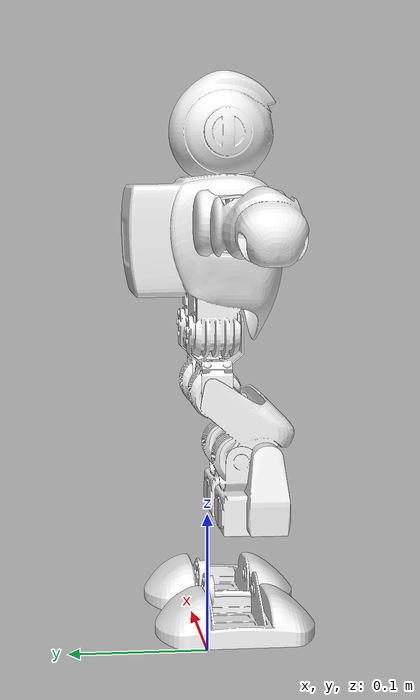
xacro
<?xml version="1.0"?>
<robot name="alpha1s" xmlns:xacro="http://www.ros.org/wiki/xacro">

  <xacro:property name="mesh_pkg" value="package://alpha1s_bringup/meshes"/>
  <xacro:property name="effort"   value="2.5"/>
  <xacro:property name="vel"      value="6.28"/>
  <xacro:property name="damp"     value="0.05"/>
  <xacro:property name="fric"     value="0.01"/>

  <!-- ── MACRO: link con malla + inercia ─────────────────────────── -->
  <xacro:macro name="robot_link" params="name mass ixx iyy izz">
    <link name="${name}">
      <visual>
        <origin xyz="0 0 0" rpy="0 0 0"/>
        <geometry>
          <mesh filename="${mesh_pkg}/visual/${name}.stl"/>
        </geometry>
        <material name="white_plastic">
          <color rgba="0.95 0.95 0.95 1.0"/>
        </material>
      </visual>
      <collision>
        <origin xyz="0 0 0" rpy="0 0 0"/>
        <geometry>
          <mesh filename="${mesh_pkg}/collision/${name}.stl"/>
        </geometry>
      </collision>
      <inertial>
        <origin xyz="0 0 0" rpy="0 0 0"/>
        <mass value="${mass}"/>
        <inertia ixx="${ixx}" ixy="0" ixz="0"
                 iyy="${iyy}" iyz="0" izz="${izz}"/>
      </inertial>
    </link>
  </xacro:macro>

  <!-- ── MACRO: joint revoluto ────────────────────────────────────── -->
  <xacro:macro name="rev_joint" params="name parent child ox oy oz ax ay az lower upper">
    <joint name="${name}" type="revolute">
      <parent link="${parent}"/>
      <child  link="${child}"/>
      <origin xyz="${ox} ${oy} ${oz}" rpy="0 0 0"/>
      <axis   xyz="${ax} ${ay} ${az}"/>
      <limit  lower="${lower}" upper="${upper}"
              effort="${effort}" velocity="${vel}"/>
      <dynamics damping="${damp}" friction="${fric}"/>
    </joint>
  </xacro:macro>

  <!-- ================================================================
       WORLD → BASE
       ================================================================ -->
  <link name="world"/>
  <joint name="world_to_base" type="fixed">
    <parent link="world"/>
    <child  link="base_link"/>
    <origin xyz="0 0 0.28" rpy="0 0 0"/>
  </joint>

  <!-- ================================================================
       BASE LINK / TORSO
       ================================================================ -->
  <xacro:robot_link name="base_link"
    mass="0.5923" ixx="0.003120" iyy="0.001890" izz="0.002410"/>

  <!-- ================================================================
       CABEZA
       offset = Head_global - base_global
       ================================================================ -->
  <xacro:robot_link name="Head_link"
    mass="0.2257" ixx="0.000520" iyy="0.000480" izz="0.000310"/>

  <xacro:rev_joint name="neck_joint"
    parent="base_link" child="Head_link"
    ox="-0.000228" oy="-0.009340" oz="0.057200"
    ax="0" ay="0" az="1"
    lower="-1.047" upper="1.047"/>

  <!-- ================================================================
       BRAZO IZQUIERDO
       ================================================================ -->
  <xacro:robot_link name="l_shoulder_link"
    mass="0.0613" ixx="0.000048" iyy="0.000052" izz="0.000031"/>

  <xacro:rev_joint name="l_shoulder_joint"
    parent="base_link" child="l_shoulder_link"
    ox="0.055000" oy="-0.011620" oz="0.029880"
    ax="1" ay="0" az="0"
    lower="-1.745" upper="1.745"/>

  <xacro:robot_link name="l_arm_link"
    mass="0.0787" ixx="0.000180" iyy="0.000120" izz="0.000095"/>

  <xacro:rev_joint name="l_arm_joint"
    parent="l_shoulder_link" child="l_arm_link"
    ox="0.021170" oy="0.018730" oz="-0.000040"
    ax="0" ay="1" az="0"
    lower="-1.571" upper="1.571"/>

  <xacro:robot_link name="l_forearm_link"
    mass="0.1040" ixx="0.000210" iyy="0.000310" izz="0.000140"/>

  <xacro:rev_joint name="l_elbow_joint"
    parent="l_arm_link" child="l_forearm_link"
    ox="0.059180" oy="-0.003730" oz="-0.000390"
    ax="0" ay="1" az="0"
    lower="-1.571" upper="1.571"/>

  <!-- ================================================================
       BRAZO DERECHO (simétrico)
       ================================================================ -->
  <xacro:robot_link name="r_shoulder_link"
    mass="0.0613" ixx="0.000048" iyy="0.000052" izz="0.000031"/>

  <xacro:rev_joint name="r_shoulder_joint"
    parent="base_link" child="r_shoulder_link"
    ox="-0.055000" oy="-0.011620" oz="0.029880"
    ax="1" ay="0" az="0"
    lower="-1.745" upper="1.745"/>

  <xacro:robot_link name="r_arm_link"
    mass="0.0787" ixx="0.000180" iyy="0.000120" izz="0.000095"/>

  <xacro:rev_joint name="r_arm_joint"
    parent="r_shoulder_link" child="r_arm_link"
    ox="-0.021170" oy="0.018730" oz="-0.000040"
    ax="0" ay="1" az="0"
    lower="-1.571" upper="1.571"/>

  <xacro:robot_link name="r_forearm_link"
    mass="0.1040" ixx="0.000210" iyy="0.000310" izz="0.000140"/>

  <xacro:rev_joint name="r_elbow_joint"
    parent="r_arm_link" child="r_forearm_link"
    ox="-0.059180" oy="-0.003730" oz="-0.000390"
    ax="0" ay="1" az="0"
    lower="-1.571" upper="1.571"/>

  <!-- ================================================================
       PIERNA IZQUIERDA
       ================================================================ -->
  <xacro:robot_link name="l_hip_roll_link"
    mass="0.0618" ixx="0.000052" iyy="0.000048" izz="0.000038"/>

  <xacro:rev_joint name="l_hip_roll_joint"
    parent="base_link" child="l_hip_roll_link"
    ox="0.026530" oy="-0.018220" oz="-0.045170"
    ax="0" ay="1" az="0"
    lower="-1.571" upper="0.524"/>

  <xacro:robot_link name="l_knee_link"
    mass="0.1035" ixx="0.000310" iyy="0.000850" izz="0.000620"/>

  <xacro:rev_joint name="l_hip_pitch_joint"
    parent="l_hip_roll_link" child="l_knee_link"
    ox="-0.013140" oy="0.014840" oz="-0.044380"
    ax="1" ay="0" az="0"
    lower="-1.571" upper="1.571"/>

  <xacro:robot_link name="l_ankle_pitch_joint"
    mass="0.0493" ixx="0.000065" iyy="0.000082" izz="0.000058"/>

  <xacro:rev_joint name="l_knee_joint"
    parent="l_knee_link" child="l_ankle_pitch_joint"
    ox="-0.005660" oy="-0.014250" oz="-0.044230"
    ax="1" ay="0" az="0"
    lower="-1.325" upper="1.571"/>

  <xacro:robot_link name="l_ankle_link"
    mass="0.0529" ixx="0.000048" iyy="0.000062" izz="0.000041"/>

  <xacro:rev_joint name="l_ankle_pitch_joint_joint"
    parent="l_ankle_pitch_joint" child="l_ankle_link"
    ox="0.001250" oy="0.002250" oz="-0.058450"
    ax="1" ay="0" az="0"
    lower="-1.047" upper="1.047"/>

  <xacro:robot_link name="l_foot_link"
    mass="0.1211" ixx="0.000240" iyy="0.000380" izz="0.000190"/>

  <xacro:rev_joint name="l_ankle_roll_joint"
    parent="l_ankle_link" child="l_foot_link"
    ox="0.012350" oy="-0.012880" oz="-0.037490"
    ax="0" ay="1" az="0"
    lower="-0.349" upper="1.396"/>

  <!-- ================================================================
       PIERNA DERECHA (simétrica)
       ================================================================ -->
  <xacro:robot_link name="r_hip_roll_link"
    mass="0.0618" ixx="0.000052" iyy="0.000048" izz="0.000038"/>

  <xacro:rev_joint name="r_hip_roll_joint"
    parent="base_link" child="r_hip_roll_link"
    ox="-0.026530" oy="-0.018220" oz="-0.045170"
    ax="0" ay="1" az="0"
    lower="-0.524" upper="1.571"/>

  <xacro:robot_link name="r_knee_link"
    mass="0.1035" ixx="0.000310" iyy="0.000850" izz="0.000620"/>

  <xacro:rev_joint name="r_hip_pitch_joint"
    parent="r_hip_roll_link" child="r_knee_link"
    ox="0.013140" oy="0.014840" oz="-0.044380"
    ax="1" ay="0" az="0"
    lower="-1.571" upper="1.571"/>

  <xacro:robot_link name="r_ankle_pitch_joint"
    mass="0.0493" ixx="0.000065" iyy="0.000082" izz="0.000058"/>

  <xacro:rev_joint name="r_knee_joint"
    parent="r_knee_link" child="r_ankle_pitch_joint"
    ox="0.005660" oy="-0.014250" oz="-0.044230"
    ax="1" ay="0" az="0"
    lower="-1.325" upper="1.571"/>

  <xacro:robot_link name="r_ankle_link"
    mass="0.0529" ixx="0.000048" iyy="0.000062" izz="0.000041"/>

  <xacro:rev_joint name="r_ankle_pitch_joint_joint"
    parent="r_ankle_pitch_joint" child="r_ankle_link"
    ox="-0.001250" oy="0.002250" oz="-0.058450"
    ax="1" ay="0" az="0"
    lower="-1.047" upper="1.047"/>

  <xacro:robot_link name="r_foot_link"
    mass="0.1211" ixx="0.000240" iyy="0.000380" izz="0.000190"/>

  <xacro:rev_joint name="r_ankle_roll_joint"
    parent="r_ankle_link" child="r_foot_link"
    ox="-0.012350" oy="-0.012880" oz="-0.037490"
    ax="0" ay="1" az="0"
    lower="-1.396" upper="0.349"/>

  <!-- ================================================================
       GAZEBO — fricción pies
       ================================================================ -->
  <gazebo reference="l_foot_link">
    <mu1>0.90</mu1><mu2>0.80</mu2>
    <kp>500000.0</kp><kd>10.0</kd>
    <minDepth>0.001</minDepth>
  </gazebo>
  <gazebo reference="r_foot_link">
    <mu1>0.90</mu1><mu2>0.80</mu2>
    <kp>500000.0</kp><kd>10.0</kd>
    <minDepth>0.001</minDepth>
  </gazebo>

  <!-- ================================================================
       ros2_control
       ================================================================ -->
  <ros2_control name="alpha1s_hardware" type="system">
    <hardware>
      <plugin>ign_ros2_control/IgnitionSystem</plugin>
    </hardware>
    <joint name="neck_joint">
      <command_interface name="position"/>
      <state_interface name="position"/>
      <state_interface name="velocity"/>
    </joint>
    <joint name="l_shoulder_joint">
      <command_interface name="position"/>
      <state_interface name="position"/>
      <state_interface name="velocity"/>
    </joint>
    <joint name="l_arm_joint">
      <command_interface name="position"/>
      <state_interface name="position"/>
      <state_interface name="velocity"/>
    </joint>
    <joint name="l_elbow_joint">
      <command_interface name="position"/>
      <state_interface name="position"/>
      <state_interface name="velocity"/>
    </joint>
    <joint name="r_shoulder_joint">
      <command_interface name="position"/>
      <state_interface name="position"/>
      <state_interface name="velocity"/>
    </joint>
    <joint name="r_arm_joint">
      <command_interface name="position"/>
      <state_interface name="position"/>
      <state_interface name="velocity"/>
    </joint>
    <joint name="r_elbow_joint">
      <command_interface name="position"/>
      <state_interface name="position"/>
      <state_interface name="velocity"/>
    </joint>
    <joint name="l_hip_roll_joint">
      <command_interface name="position"/>
      <state_interface name="position"/>
      <state_interface name="velocity"/>
    </joint>
    <joint name="l_hip_pitch_joint">
      <command_interface name="position"/>
      <state_interface name="position"/>
      <state_interface name="velocity"/>
    </joint>
    <joint name="l_knee_joint">
      <command_interface name="position"/>
      <state_interface name="position"/>
      <state_interface name="velocity"/>
    </joint>
    <joint name="l_ankle_pitch_joint_joint">
      <command_interface name="position"/>
      <state_interface name="position"/>
      <state_interface name="velocity"/>
    </joint>
    <joint name="l_ankle_roll_joint">
      <command_interface name="position"/>
      <state_interface name="position"/>
      <state_interface name="velocity"/>
    </joint>
    <joint name="r_hip_roll_joint">
      <command_interface name="position"/>
      <state_interface name="position"/>
      <state_interface name="velocity"/>
    </joint>
    <joint name="r_hip_pitch_joint">
      <command_interface name="position"/>
      <state_interface name="position"/>
      <state_interface name="velocity"/>
    </joint>
    <joint name="r_knee_joint">
      <command_interface name="position"/>
      <state_interface name="position"/>
      <state_interface name="velocity"/>
    </joint>
    <joint name="r_ankle_pitch_joint_joint">
      <command_interface name="position"/>
      <state_interface name="position"/>
      <state_interface name="velocity"/>
    </joint>
    <joint name="r_ankle_roll_joint">
      <command_interface name="position"/>
      <state_interface name="position"/>
      <state_interface name="velocity"/>
    </joint>
  </ros2_control>

</robot>
